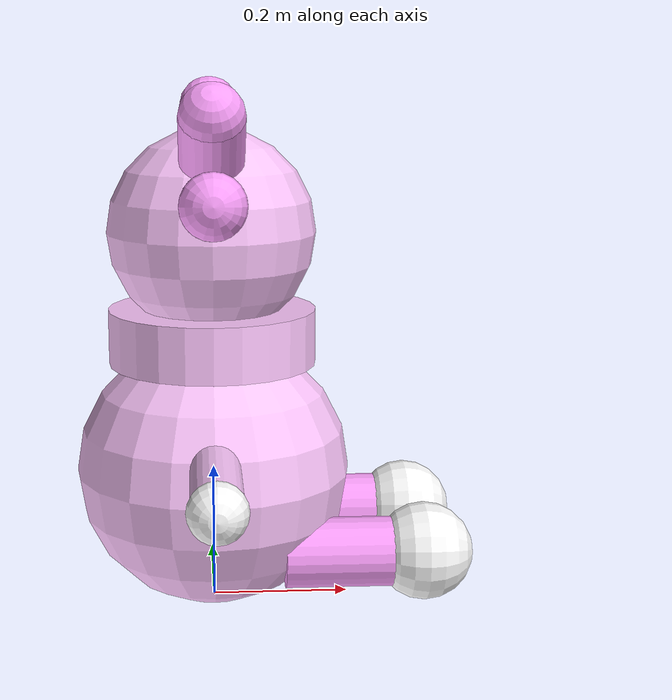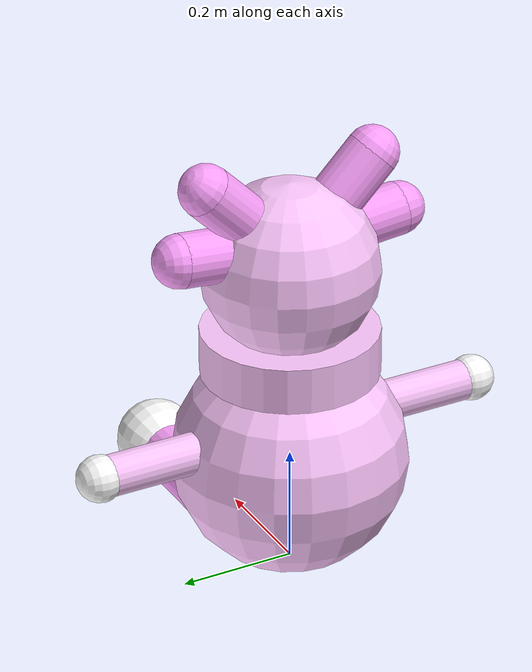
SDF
<sdf version='1.11'>
  <model name='Moonzy'>
    <link name='base_link'>
      <inertial>
        <pose>0 0 0.20821917808219181 0 0 0</pose>
        <mass>36.5</mass>
        <inertia>
          <ixx>0.6267717465753424</ixx>
          <ixy>0</ixy>
          <ixz>0</ixz>
          <iyy>0.6267717465753424</iyy>
          <iyz>0</iyz>
          <izz>0.57687500000000003</izz>
        </inertia>
      </inertial>
      <collision name='base_link_fixed_joint_lump__stomach_collision'>
        <pose>0 0 0.20000000000000001 0 0 0</pose>
        <geometry>
          <sphere>
            <radius>0.20000000000000001</radius>
          </sphere>
        </geometry>
      </collision>
      <collision name='base_link_fixed_joint_lump__neck_collision_1'>
        <pose>0 0 0.40000000000000002 0 0 0</pose>
        <geometry>
          <cylinder>
            <length>0.080000000000000002</length>
            <radius>0.14999999999999999</radius>
          </cylinder>
        </geometry>
      </collision>
      <visual name='base_link_fixed_joint_lump__stomach_visual'>
        <pose>0 0 0.20000000000000001 0 0 0</pose>
        <geometry>
          <sphere>
            <radius>0.20000000000000001</radius>
          </sphere>
        </geometry>
        <material>
          <diffuse>1 0.784313738 1 1</diffuse>
          <ambient>1 0.784313738 1 1</ambient>
        </material>
      </visual>
      <visual name='base_link_fixed_joint_lump__neck_visual_1'>
        <pose>0 0 0.40000000000000002 0 0 0</pose>
        <geometry>
          <cylinder>
            <length>0.080000000000000002</length>
            <radius>0.14999999999999999</radius>
          </cylinder>
        </geometry>
        <material>
          <diffuse>1 0.784313738 1 1</diffuse>
          <ambient>1 0.784313738 1 1</ambient>
        </material>
      </visual>
    </link>
    <joint name='left_arm_joint' type='revolute'>
      <pose relative_to='base_link'>0 0.14999999999999999 0.25 1.5707963267948959 0 0</pose>
      <parent>base_link</parent>
      <child>left_arm</child>
      <axis>
        <xyz>1 0 0</xyz>
        <limit>
          <lower>-0.78539816339744828</lower>
          <upper>0.78539816339744828</upper>
          <effort>1000</effort>
          <velocity>0.5</velocity>
        </limit>
        <dynamics>
          <spring_reference>0</spring_reference>
          <spring_stiffness>0</spring_stiffness>
        </dynamics>
      </axis>
    </joint>
    <link name='left_arm'>
      <pose relative_to='left_arm_joint'>0 0 0 0 0 0</pose>
      <inertial>
        <pose>0 0 -0.1111111111111111 0 0 0</pose>
        <mass>0.90000000000000002</mass>
        <inertia>
          <ixx>0.0038645555555555529</ixx>
          <ixy>0</ixy>
          <ixz>0</ixz>
          <iyy>0.0038645555555555529</iyy>
          <iyz>0</iyz>
          <izz>0.00055400000000000013</izz>
        </inertia>
      </inertial>
      <collision name='left_arm_collision'>
        <pose>0 0 -0.10000000000000001 0 0 0</pose>
        <geometry>
          <cylinder>
            <length>0.20000000000000001</length>
            <radius>0.035000000000000003</radius>
          </cylinder>
        </geometry>
      </collision>
      <collision name='left_arm_fixed_joint_lump__left_paw_collision_1'>
        <pose>0 0 -0.20000000000000001 0 0 0</pose>
        <geometry>
          <sphere>
            <radius>0.040000000000000001</radius>
          </sphere>
        </geometry>
      </collision>
      <visual name='left_arm_visual'>
        <pose>0 0 -0.10000000000000001 0 0 0</pose>
        <geometry>
          <cylinder>
            <length>0.20000000000000001</length>
            <radius>0.035000000000000003</radius>
          </cylinder>
        </geometry>
        <material>
          <diffuse>1 0.784313738 1 1</diffuse>
          <ambient>1 0.784313738 1 1</ambient>
        </material>
      </visual>
      <visual name='left_arm_fixed_joint_lump__left_paw_visual_1'>
        <pose>0 0 -0.20000000000000001 0 0 0</pose>
        <geometry>
          <sphere>
            <radius>0.040000000000000001</radius>
          </sphere>
        </geometry>
        <material>
          <diffuse>1 1 1 1</diffuse>
          <ambient>1 1 1 1</ambient>
        </material>
      </visual>
    </link>
    <joint name='head_swivel' type='revolute'>
      <pose relative_to='base_link'>0 0 0.55000000000000004 0 0 0</pose>
      <parent>base_link</parent>
      <child>head</child>
      <axis>
        <xyz>0 0 1</xyz>
        <limit>
          <lower>-1.570796326794897</lower>
          <upper>1.570796326794897</upper>
          <effort>1000</effort>
          <velocity>0.5</velocity>
        </limit>
        <dynamics>
          <spring_reference>0</spring_reference>
          <spring_stiffness>0</spring_stiffness>
        </dynamics>
      </axis>
    </joint>
    <link name='head'>
      <pose relative_to='head_swivel'>0 0 0 0 0 0</pose>
      <inertial>
        <pose>0 0 0 0 0 0</pose>
        <mass>3</mass>
        <inertia>
          <ixx>0.027</ixx>
          <ixy>0</ixy>
          <ixz>0</ixz>
          <iyy>0.027</iyy>
          <iyz>0</iyz>
          <izz>0.027</izz>
        </inertia>
      </inertial>
      <collision name='head_collision'>
        <pose>0 0 0 0 0 0</pose>
        <geometry>
          <sphere>
            <radius>0.14999999999999999</radius>
          </sphere>
        </geometry>
      </collision>
      <visual name='head_visual'>
        <pose>0 0 0 0 0 0</pose>
        <geometry>
          <sphere>
            <radius>0.14999999999999999</radius>
          </sphere>
        </geometry>
        <material>
          <diffuse>1 0.784313738 1 1</diffuse>
          <ambient>1 0.784313738 1 1</ambient>
        </material>
      </visual>
    </link>
    <joint name='left_lower_ear_joint' type='revolute'>
      <pose relative_to='head'>0 0.10000000000000001 0.050000000000000003 1.6580627893946129 0 0</pose>
      <parent>head</parent>
      <child>left_lower_ear</child>
      <axis>
        <xyz>1 0 0</xyz>
        <limit>
          <lower>-0.05235987755982989</lower>
          <upper>0.05235987755982989</upper>
          <effort>1000</effort>
          <velocity>0.5</velocity>
        </limit>
        <dynamics>
          <spring_reference>0</spring_reference>
          <spring_stiffness>0</spring_stiffness>
        </dynamics>
      </axis>
    </joint>
    <link name='left_lower_ear'>
      <pose relative_to='left_lower_ear_joint'>0 0 0 0 0 0</pose>
      <inertial>
        <pose>0 0 -0.075000000000000011 0 0 0</pose>
        <mass>1</mass>
        <inertia>
          <ixx>0.0016997916666666661</ixx>
          <ixy>0</ixy>
          <ixz>0</ixz>
          <iyy>0.0016997916666666661</iyy>
          <iyz>0</iyz>
          <izz>0.00091124999999999995</izz>
        </inertia>
      </inertial>
      <collision name='left_lower_ear_collision'>
        <pose>0 0 -0.050000000000000003 0 0 0</pose>
        <geometry>
          <cylinder>
            <length>0.10000000000000001</length>
            <radius>0.044999999999999998</radius>
          </cylinder>
        </geometry>
      </collision>
      <collision name='left_lower_ear_tip_collision_1'>
        <pose>0 0 -0.10000000000000001 0 0 0</pose>
        <geometry>
          <sphere>
            <radius>0.044999999999999998</radius>
          </sphere>
        </geometry>
      </collision>
      <visual name='left_lower_ear_visual'>
        <pose>0 0 -0.050000000000000003 0 0 0</pose>
        <geometry>
          <cylinder>
            <length>0.10000000000000001</length>
            <radius>0.044999999999999998</radius>
          </cylinder>
        </geometry>
        <material>
          <diffuse>1 0.637254953 1 1</diffuse>
          <ambient>1 0.637254953 1 1</ambient>
        </material>
      </visual>
      <visual name='left_lower_ear_tip_visual_1'>
        <pose>0 0 -0.10000000000000001 0 0 0</pose>
        <geometry>
          <sphere>
            <radius>0.044999999999999998</radius>
          </sphere>
        </geometry>
        <material>
          <diffuse>1 0.637254953 1 1</diffuse>
          <ambient>1 0.637254953 1 1</ambient>
        </material>
      </visual>
    </link>
    <joint name='left_upper_ear_joint' type='revolute'>
      <pose relative_to='head'>0 0.080000000000000002 0.10000000000000001 2.3561944901923448 0 0</pose>
      <parent>head</parent>
      <child>left_upper_ear</child>
      <axis>
        <xyz>1 0 0</xyz>
        <limit>
          <lower>-0.05235987755982989</lower>
          <upper>0.05235987755982989</upper>
          <effort>1000</effort>
          <velocity>0.5</velocity>
        </limit>
        <dynamics>
          <spring_reference>0</spring_reference>
          <spring_stiffness>0</spring_stiffness>
        </dynamics>
      </axis>
    </joint>
    <link name='left_upper_ear'>
      <pose relative_to='left_upper_ear_joint'>0 0 0 0 0 0</pose>
      <inertial>
        <pose>0 0 -0.075000000000000011 0 0 0</pose>
        <mass>1</mass>
        <inertia>
          <ixx>0.0016997916666666661</ixx>
          <ixy>0</ixy>
          <ixz>0</ixz>
          <iyy>0.0016997916666666661</iyy>
          <iyz>0</iyz>
          <izz>0.00091124999999999995</izz>
        </inertia>
      </inertial>
      <collision name='left_upper_ear_collision'>
        <pose>0 0 -0.050000000000000003 0 0 0</pose>
        <geometry>
          <cylinder>
            <length>0.10000000000000001</length>
            <radius>0.044999999999999998</radius>
          </cylinder>
        </geometry>
      </collision>
      <collision name='left_upper_ear_tip_collision_1'>
        <pose>0 0 -0.10000000000000001 0 0 0</pose>
        <geometry>
          <sphere>
            <radius>0.044999999999999998</radius>
          </sphere>
        </geometry>
      </collision>
      <visual name='left_upper_ear_visual'>
        <pose>0 0 -0.050000000000000003 0 0 0</pose>
        <geometry>
          <cylinder>
            <length>0.10000000000000001</length>
            <radius>0.044999999999999998</radius>
          </cylinder>
        </geometry>
        <material>
          <diffuse>1 0.637254953 1 1</diffuse>
          <ambient>1 0.637254953 1 1</ambient>
        </material>
      </visual>
      <visual name='left_upper_ear_tip_visual_1'>
        <pose>0 0 -0.10000000000000001 0 0 0</pose>
        <geometry>
          <sphere>
            <radius>0.044999999999999998</radius>
          </sphere>
        </geometry>
        <material>
          <diffuse>1 0.637254953 1 1</diffuse>
          <ambient>1 0.637254953 1 1</ambient>
        </material>
      </visual>
    </link>
    <joint name='right_lower_ear_joint' type='revolute'>
      <pose relative_to='head'>0 -0.10000000000000001 0.050000000000000003 1.48352986419518 0 0</pose>
      <parent>head</parent>
      <child>right_lower_ear</child>
      <axis>
        <xyz>1 0 0</xyz>
        <limit>
          <lower>-0.05235987755982989</lower>
          <upper>0.05235987755982989</upper>
          <effort>1000</effort>
          <velocity>0.5</velocity>
        </limit>
        <dynamics>
          <spring_reference>0</spring_reference>
          <spring_stiffness>0</spring_stiffness>
        </dynamics>
      </axis>
    </joint>
    <link name='right_lower_ear'>
      <pose relative_to='right_lower_ear_joint'>0 0 0 0 0 0</pose>
      <inertial>
        <pose>0 0 0.075000000000000011 0 0 0</pose>
        <mass>1</mass>
        <inertia>
          <ixx>0.0016997916666666661</ixx>
          <ixy>0</ixy>
          <ixz>0</ixz>
          <iyy>0.0016997916666666661</iyy>
          <iyz>0</iyz>
          <izz>0.00091124999999999995</izz>
        </inertia>
      </inertial>
      <collision name='right_lower_ear_collision'>
        <pose>0 0 0.050000000000000003 0 0 0</pose>
        <geometry>
          <cylinder>
            <length>0.10000000000000001</length>
            <radius>0.044999999999999998</radius>
          </cylinder>
        </geometry>
      </collision>
      <collision name='right_lower_ear_tip_collision_1'>
        <pose>0 0 0.10000000000000001 0 0 0</pose>
        <geometry>
          <sphere>
            <radius>0.044999999999999998</radius>
          </sphere>
        </geometry>
      </collision>
      <visual name='right_lower_ear_visual'>
        <pose>0 0 0.050000000000000003 0 0 0</pose>
        <geometry>
          <cylinder>
            <length>0.10000000000000001</length>
            <radius>0.044999999999999998</radius>
          </cylinder>
        </geometry>
        <material>
          <diffuse>1 0.637254953 1 1</diffuse>
          <ambient>1 0.637254953 1 1</ambient>
        </material>
      </visual>
      <visual name='right_lower_ear_tip_visual_1'>
        <pose>0 0 0.10000000000000001 0 0 0</pose>
        <geometry>
          <sphere>
            <radius>0.044999999999999998</radius>
          </sphere>
        </geometry>
        <material>
          <diffuse>1 0.637254953 1 1</diffuse>
          <ambient>1 0.637254953 1 1</ambient>
        </material>
      </visual>
    </link>
    <joint name='right_upper_ear_joint' type='revolute'>
      <pose relative_to='head'>0 -0.080000000000000002 0.10000000000000001 0.7853981633974485 0 0</pose>
      <parent>head</parent>
      <child>right_upper_ear</child>
      <axis>
        <xyz>1 0 0</xyz>
        <limit>
          <lower>-0.05235987755982989</lower>
          <upper>0.05235987755982989</upper>
          <effort>1000</effort>
          <velocity>0.5</velocity>
        </limit>
        <dynamics>
          <spring_reference>0</spring_reference>
          <spring_stiffness>0</spring_stiffness>
        </dynamics>
      </axis>
    </joint>
    <link name='right_upper_ear'>
      <pose relative_to='right_upper_ear_joint'>0 0 0 0 0 0</pose>
      <inertial>
        <pose>0 0 0.075000000000000011 0 0 0</pose>
        <mass>1</mass>
        <inertia>
          <ixx>0.0016997916666666661</ixx>
          <ixy>0</ixy>
          <ixz>0</ixz>
          <iyy>0.0016997916666666661</iyy>
          <iyz>0</iyz>
          <izz>0.00091124999999999995</izz>
        </inertia>
      </inertial>
      <collision name='right_upper_ear_collision'>
        <pose>0 0 0.050000000000000003 0 0 0</pose>
        <geometry>
          <cylinder>
            <length>0.10000000000000001</length>
            <radius>0.044999999999999998</radius>
          </cylinder>
        </geometry>
      </collision>
      <collision name='right_upper_ear_tip_collision_1'>
        <pose>0 0 0.10000000000000001 0 0 0</pose>
        <geometry>
          <sphere>
            <radius>0.044999999999999998</radius>
          </sphere>
        </geometry>
      </collision>
      <visual name='right_upper_ear_visual'>
        <pose>0 0 0.050000000000000003 0 0 0</pose>
        <geometry>
          <cylinder>
            <length>0.10000000000000001</length>
            <radius>0.044999999999999998</radius>
          </cylinder>
        </geometry>
        <material>
          <diffuse>1 0.637254953 1 1</diffuse>
          <ambient>1 0.637254953 1 1</ambient>
        </material>
      </visual>
      <visual name='right_upper_ear_tip_visual_1'>
        <pose>0 0 0.10000000000000001 0 0 0</pose>
        <geometry>
          <sphere>
            <radius>0.044999999999999998</radius>
          </sphere>
        </geometry>
        <material>
          <diffuse>1 0.637254953 1 1</diffuse>
          <ambient>1 0.637254953 1 1</ambient>
        </material>
      </visual>
    </link>
    <joint name='right_arm_joint' type='revolute'>
      <pose relative_to='base_link'>0 -0.14999999999999999 0.25 1.5707963267948959 0 0</pose>
      <parent>base_link</parent>
      <child>right_arm</child>
      <axis>
        <xyz>1 0 0</xyz>
        <limit>
          <lower>-0.78539816339744828</lower>
          <upper>0.78539816339744828</upper>
          <effort>1000</effort>
          <velocity>0.5</velocity>
        </limit>
        <dynamics>
          <spring_reference>0</spring_reference>
          <spring_stiffness>0</spring_stiffness>
        </dynamics>
      </axis>
    </joint>
    <link name='right_arm'>
      <pose relative_to='right_arm_joint'>0 0 0 0 0 0</pose>
      <inertial>
        <pose>0 0 0.1111111111111111 0 0 0</pose>
        <mass>0.90000000000000002</mass>
        <inertia>
          <ixx>0.0038645555555555529</ixx>
          <ixy>0</ixy>
          <ixz>0</ixz>
          <iyy>0.0038645555555555529</iyy>
          <iyz>0</iyz>
          <izz>0.00055400000000000013</izz>
        </inertia>
      </inertial>
      <collision name='right_arm_collision'>
        <pose>0 0 0.10000000000000001 0 0 0</pose>
        <geometry>
          <cylinder>
            <length>0.20000000000000001</length>
            <radius>0.035000000000000003</radius>
          </cylinder>
        </geometry>
      </collision>
      <collision name='right_arm_fixed_joint_lump__right_paw_collision_1'>
        <pose>0 0 0.20000000000000001 0 0 0</pose>
        <geometry>
          <sphere>
            <radius>0.040000000000000001</radius>
          </sphere>
        </geometry>
      </collision>
      <visual name='right_arm_visual'>
        <pose>0 0 0.10000000000000001 0 0 0</pose>
        <geometry>
          <cylinder>
            <length>0.20000000000000001</length>
            <radius>0.035000000000000003</radius>
          </cylinder>
        </geometry>
        <material>
          <diffuse>1 0.784313738 1 1</diffuse>
          <ambient>1 0.784313738 1 1</ambient>
        </material>
      </visual>
      <visual name='right_arm_fixed_joint_lump__right_paw_visual_1'>
        <pose>0 0 0.20000000000000001 0 0 0</pose>
        <geometry>
          <sphere>
            <radius>0.040000000000000001</radius>
          </sphere>
        </geometry>
        <material>
          <diffuse>1 1 1 1</diffuse>
          <ambient>1 1 1 1</ambient>
        </material>
      </visual>
    </link>
    <joint name='stomach_to_left_leg' type='revolute'>
      <pose relative_to='base_link'>0.10000000000000001 0.10000000000000001 0.10000000000000001 0 1.5707963267948966 0</pose>
      <parent>base_link</parent>
      <child>left_leg</child>
      <axis>
        <xyz>0 1 0</xyz>
        <limit>
          <lower>-0.78539816339744828</lower>
          <upper>1.570796326794897</upper>
          <effort>1000</effort>
          <velocity>0.5</velocity>
        </limit>
        <dynamics>
          <spring_reference>0</spring_reference>
          <spring_stiffness>0</spring_stiffness>
        </dynamics>
      </axis>
    </joint>
    <link name='left_leg'>
      <pose relative_to='stomach_to_left_leg'>0 0 0 0 0 0</pose>
      <inertial>
        <pose>0 0 0.10000000000000001 0 0 0</pose>
        <mass>1</mass>
        <inertia>
          <ixx>0.0039583333333333337</ixx>
          <ixy>0</ixy>
          <ixz>0</ixz>
          <iyy>0.0039583333333333337</iyy>
          <iyz>0</iyz>
          <izz>0.00125</izz>
        </inertia>
      </inertial>
      <collision name='left_leg_collision'>
        <pose>0 0 0.10000000000000001 0 0 0</pose>
        <geometry>
          <cylinder>
            <length>0.20000000000000001</length>
            <radius>0.050000000000000003</radius>
          </cylinder>
        </geometry>
      </collision>
      <visual name='left_leg_visual'>
        <pose>0 0 0.10000000000000001 0 0 0</pose>
        <geometry>
          <cylinder>
            <length>0.20000000000000001</length>
            <radius>0.050000000000000003</radius>
          </cylinder>
        </geometry>
        <material>
          <diffuse>1 0.637254953 1 1</diffuse>
          <ambient>1 0.637254953 1 1</ambient>
        </material>
      </visual>
    </link>
    <joint name='left_wheel_joint' type='revolute'>
      <pose relative_to='left_leg'>0 0 0.20000000000000001 0 0 0</pose>
      <parent>left_leg</parent>
      <child>left_wheel</child>
      <axis>
        <xyz>0 1 0</xyz>
        <limit>
          <lower>-inf</lower>
          <upper>inf</upper>
        </limit>
        <dynamics>
          <spring_reference>0</spring_reference>
          <spring_stiffness>0</spring_stiffness>
        </dynamics>
      </axis>
    </joint>
    <link name='left_wheel'>
      <pose relative_to='left_wheel_joint'>0 0 0 0 0 0</pose>
      <inertial>
        <pose>0 0 0 0 0 0</pose>
        <mass>0.20000000000000001</mass>
        <inertia>
          <ixx>0.0003920000000000001</ixx>
          <ixy>0</ixy>
          <ixz>0</ixz>
          <iyy>0.0003920000000000001</iyy>
          <iyz>0</iyz>
          <izz>0.0003920000000000001</izz>
        </inertia>
      </inertial>
      <collision name='left_wheel_collision'>
        <pose>0 0 0 0 0 0</pose>
        <geometry>
          <sphere>
            <radius>0.070000000000000007</radius>
          </sphere>
        </geometry>
      </collision>
      <visual name='left_wheel_visual'>
        <pose>0 0 0 0 0 0</pose>
        <geometry>
          <sphere>
            <radius>0.070000000000000007</radius>
          </sphere>
        </geometry>
        <material>
          <diffuse>1 1 1 1</diffuse>
          <ambient>1 1 1 1</ambient>
        </material>
      </visual>
    </link>
    <joint name='stomach_to_right_leg' type='revolute'>
      <pose relative_to='base_link'>0.10000000000000001 -0.10000000000000001 0.10000000000000001 0 1.5707963267948966 0</pose>
      <parent>base_link</parent>
      <child>right_leg</child>
      <axis>
        <xyz>0 1 0</xyz>
        <limit>
          <lower>-0.78539816339744828</lower>
          <upper>1.570796326794897</upper>
          <effort>1000</effort>
          <velocity>0.5</velocity>
        </limit>
        <dynamics>
          <spring_reference>0</spring_reference>
          <spring_stiffness>0</spring_stiffness>
        </dynamics>
      </axis>
    </joint>
    <link name='right_leg'>
      <pose relative_to='stomach_to_right_leg'>0 0 0 0 0 0</pose>
      <inertial>
        <pose>0 0 0.10000000000000001 0 0 0</pose>
        <mass>1</mass>
        <inertia>
          <ixx>0.0039583333333333337</ixx>
          <ixy>0</ixy>
          <ixz>0</ixz>
          <iyy>0.0039583333333333337</iyy>
          <iyz>0</iyz>
          <izz>0.00125</izz>
        </inertia>
      </inertial>
      <collision name='right_leg_collision'>
        <pose>0 0 0.10000000000000001 0 0 0</pose>
        <geometry>
          <cylinder>
            <length>0.20000000000000001</length>
            <radius>0.050000000000000003</radius>
          </cylinder>
        </geometry>
      </collision>
      <visual name='right_leg_visual'>
        <pose>0 0 0.10000000000000001 0 0 0</pose>
        <geometry>
          <cylinder>
            <length>0.20000000000000001</length>
            <radius>0.050000000000000003</radius>
          </cylinder>
        </geometry>
        <material>
          <diffuse>1 0.637254953 1 1</diffuse>
          <ambient>1 0.637254953 1 1</ambient>
        </material>
      </visual>
    </link>
    <joint name='right_wheel_joint' type='revolute'>
      <pose relative_to='right_leg'>0 0 0.20000000000000001 0 0 0</pose>
      <parent>right_leg</parent>
      <child>right_wheel</child>
      <axis>
        <xyz>0 1 0</xyz>
        <limit>
          <lower>-inf</lower>
          <upper>inf</upper>
        </limit>
        <dynamics>
          <spring_reference>0</spring_reference>
          <spring_stiffness>0</spring_stiffness>
        </dynamics>
      </axis>
    </joint>
    <link name='right_wheel'>
      <pose relative_to='right_wheel_joint'>0 0 0 0 0 0</pose>
      <inertial>
        <pose>0 0 0 0 0 0</pose>
        <mass>0.20000000000000001</mass>
        <inertia>
          <ixx>0.0003920000000000001</ixx>
          <ixy>0</ixy>
          <ixz>0</ixz>
          <iyy>0.0003920000000000001</iyy>
          <iyz>0</iyz>
          <izz>0.0003920000000000001</izz>
        </inertia>
      </inertial>
      <collision name='right_wheel_collision'>
        <pose>0 0 0 0 0 0</pose>
        <geometry>
          <sphere>
            <radius>0.070000000000000007</radius>
          </sphere>
        </geometry>
      </collision>
      <visual name='right_wheel_visual'>
        <pose>0 0 0 0 0 0</pose>
        <geometry>
          <sphere>
            <radius>0.070000000000000007</radius>
          </sphere>
        </geometry>
        <material>
          <diffuse>1 1 1 1</diffuse>
          <ambient>1 1 1 1</ambient>
        </material>
      </visual>
    </link>
    <plugin name='gz::sim::systems::JointStatePublisher' filename='gz-sim-joint-state-publisher-system'/>
    <plugin name='gz::sim::systems::DiffDrive' filename='gz-sim-diff-drive-system'>
      <left_joint>left_wheel_joint</left_joint>
      <right_joint>right_wheel_joint</right_joint>
      <child_frame_id>Moonzy/base_link</child_frame_id>
      <wheel_separation>0.2</wheel_separation>
      <wheel_radius>0.07</wheel_radius>
      <odom_publish_frequency>10</odom_publish_frequency>
    </plugin>
    <frame name='neck_joint' attached_to='stomach'>
      <pose>0 0 0.20000000000000001 0 0 0</pose>
    </frame>
    <frame name='neck' attached_to='neck_joint'>
      <pose>0 0 0 0 0 0</pose>
    </frame>
    <frame name='left_lower_ear_tip_joint' attached_to='left_lower_ear'>
      <pose>0 0 -0.10000000000000001 0 0 0</pose>
    </frame>
    <frame name='left_lower_ear_tip' attached_to='left_lower_ear_tip_joint'>
      <pose>0 0 0 0 0 0</pose>
    </frame>
    <frame name='left_upper_ear_tip_joint' attached_to='left_upper_ear'>
      <pose>0 0 -0.10000000000000001 0 0 0</pose>
    </frame>
    <frame name='left_upper_ear_tip' attached_to='left_upper_ear_tip_joint'>
      <pose>0 0 0 0 0 0</pose>
    </frame>
    <frame name='right_lower_ear_tip_joint' attached_to='right_lower_ear'>
      <pose>0 0 0.10000000000000001 0 0 0</pose>
    </frame>
    <frame name='right_lower_ear_tip' attached_to='right_lower_ear_tip_joint'>
      <pose>0 0 0 0 0 0</pose>
    </frame>
    <frame name='right_upper_ear_tip_joint' attached_to='right_upper_ear'>
      <pose>0 0 0.10000000000000001 0 0 0</pose>
    </frame>
    <frame name='right_upper_ear_tip' attached_to='right_upper_ear_tip_joint'>
      <pose>0 0 0 0 0 0</pose>
    </frame>
    <frame name='stomach_to_base' attached_to='base_link'>
      <pose>0 0 0.20000000000000001 0 0 0</pose>
    </frame>
    <frame name='stomach' attached_to='stomach_to_base'>
      <pose>0 0 0 0 0 0</pose>
    </frame>
    <frame name='left_paw_joint' attached_to='left_arm'>
      <pose>0 0 -0.20000000000000001 0 0 0</pose>
    </frame>
    <frame name='left_paw' attached_to='left_paw_joint'>
      <pose>0 0 0 0 0 0</pose>
    </frame>
    <frame name='right_paw_joint' attached_to='right_arm'>
      <pose>0 0 0.20000000000000001 0 0 0</pose>
    </frame>
    <frame name='right_paw' attached_to='right_paw_joint'>
      <pose>0 0 0 0 0 0</pose>
    </frame>
  </model>
</sdf>
